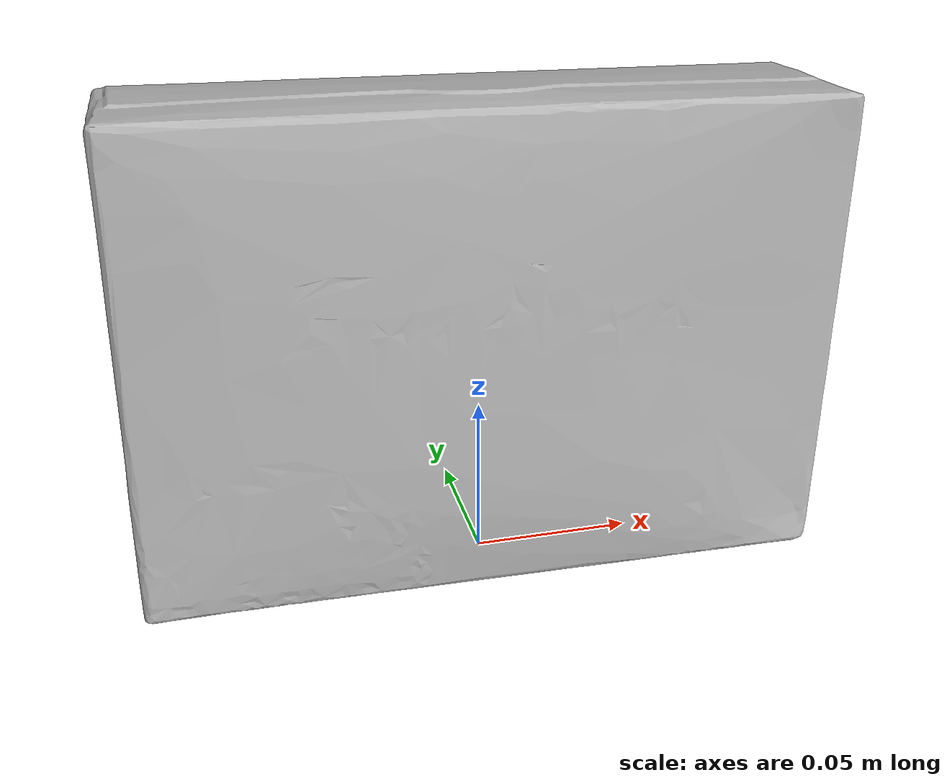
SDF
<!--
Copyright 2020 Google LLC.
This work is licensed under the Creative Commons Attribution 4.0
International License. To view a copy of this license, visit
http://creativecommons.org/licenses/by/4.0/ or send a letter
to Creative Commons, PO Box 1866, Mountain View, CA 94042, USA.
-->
<?xml version="1.0" ?>
<sdf version="1.6">
  <model name="Black_Forest_Fruit_Snacks_Juicy_Filled_Centers_10_pouches_9_oz_total">
    <link name="link_0">
      <visual name="visual">
        <geometry>
          <mesh>
            <uri>meshes/model.obj</uri>
          </mesh>
        </geometry>
      </visual>
      <collision name="collision_0">
        <geometry>
          <mesh>
            <uri>meshes/model.obj</uri>
          </mesh>
        </geometry>
      </collision>
    </link>
  </model>
</sdf>
